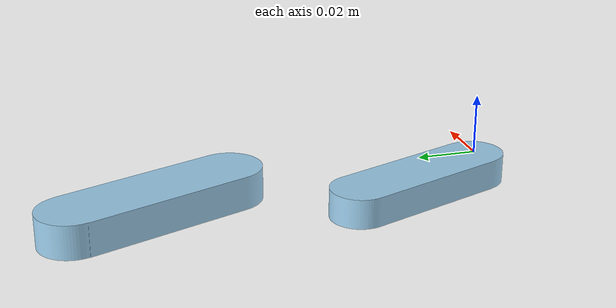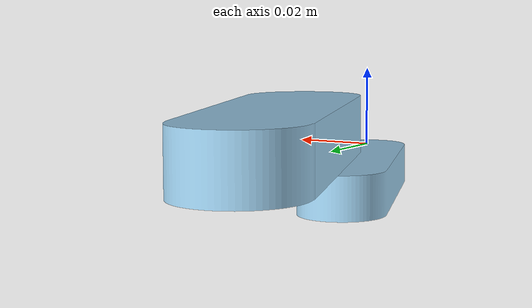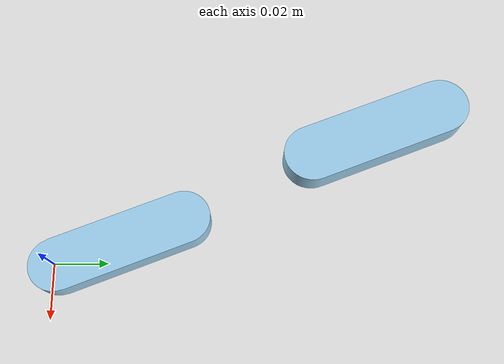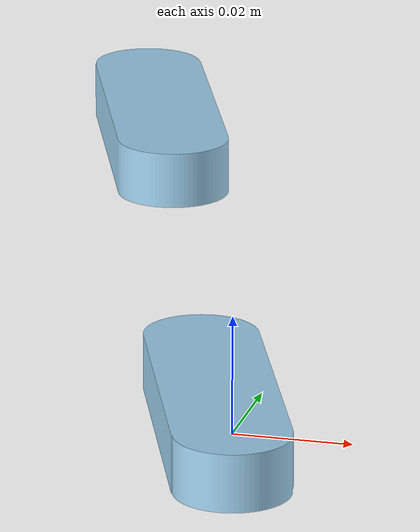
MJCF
<mujoco model="MuJoCo Model">
  <compiler angle="radian"/>

  <default>
    <geom type="mesh"/>
  </default>

  <asset>
    <mesh name="link" file="/Users/mohammadhamid/Mujoco/onshape_to_mjcf_ws/onshape-to-mjcf/examples/group_feature/group_feature/assets/link.stl"/>
  </asset>

  <worldbody>
    <body name="base">
      <geom pos="-0.0174108 0.0468707 -0.01" quat="0.125085 -0.695955 -0.125085 -0.695955" rgba="0.615686 0.811765 0.929412 1" mesh="link"/>
      <body name="link" pos="-0.0348215 0.0937415 0.01" quat="0 -0.57087 -0.821041 0">
        <joint name="Revolute 11" pos="0 0 0" axis="0 0 1" range="-3.14 3.14"/>
        <geom pos="0 0 -0.01" quat="0.5 -0.5 -0.5 -0.5" rgba="0.615686 0.811765 0.929412 1" mesh="link"/>
      </body>
    </body>
  </worldbody>
</mujoco>
